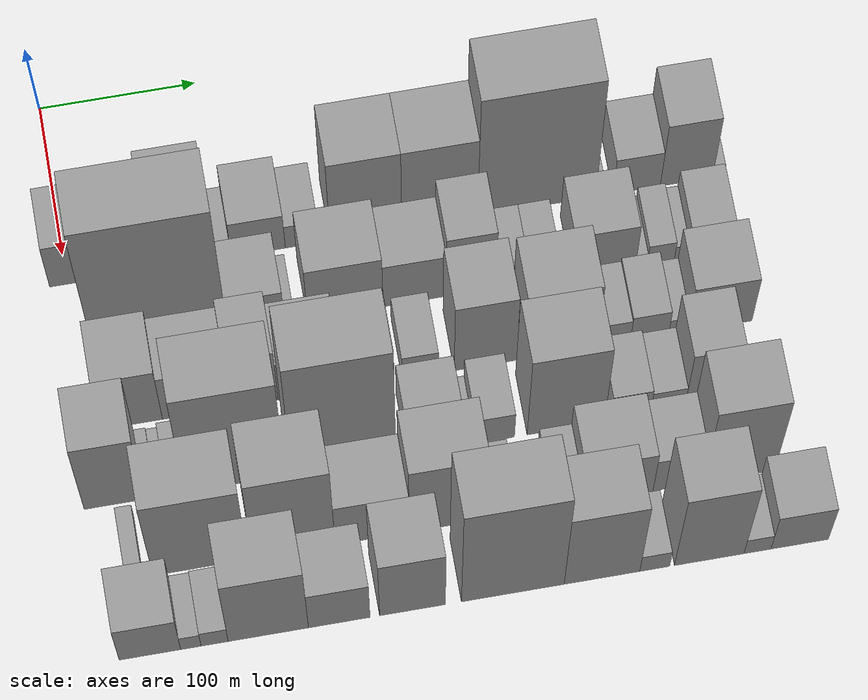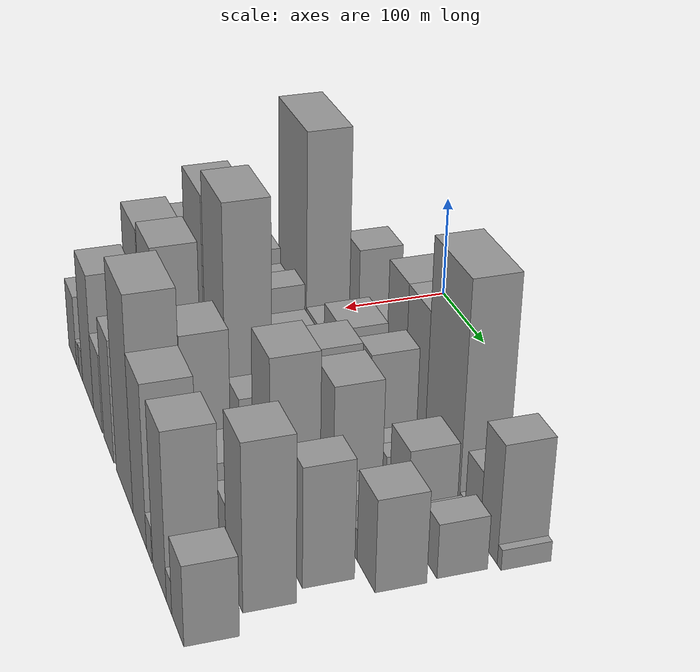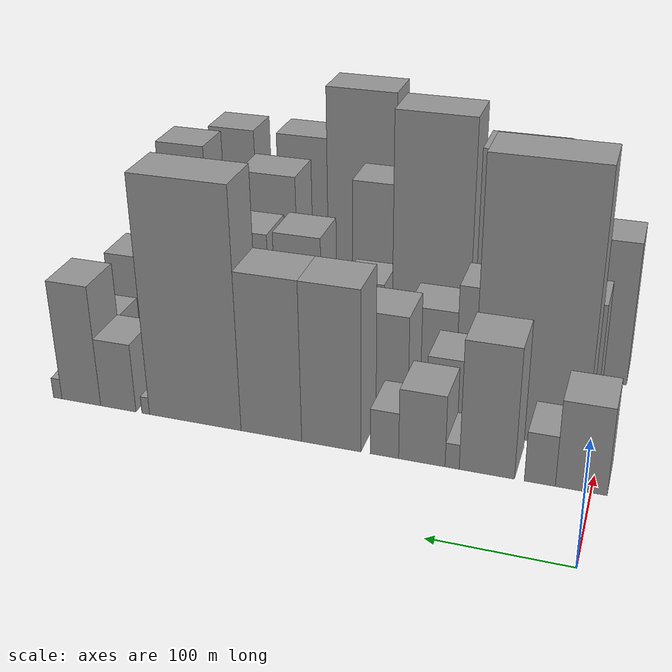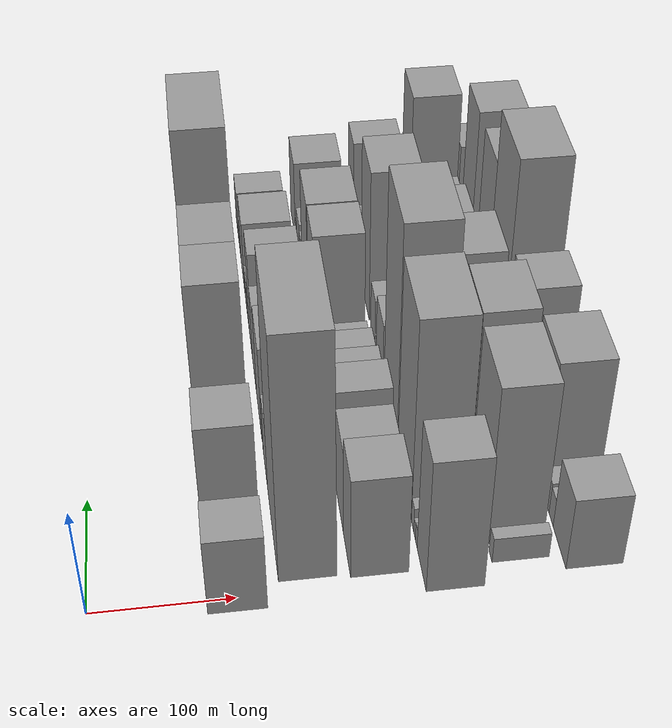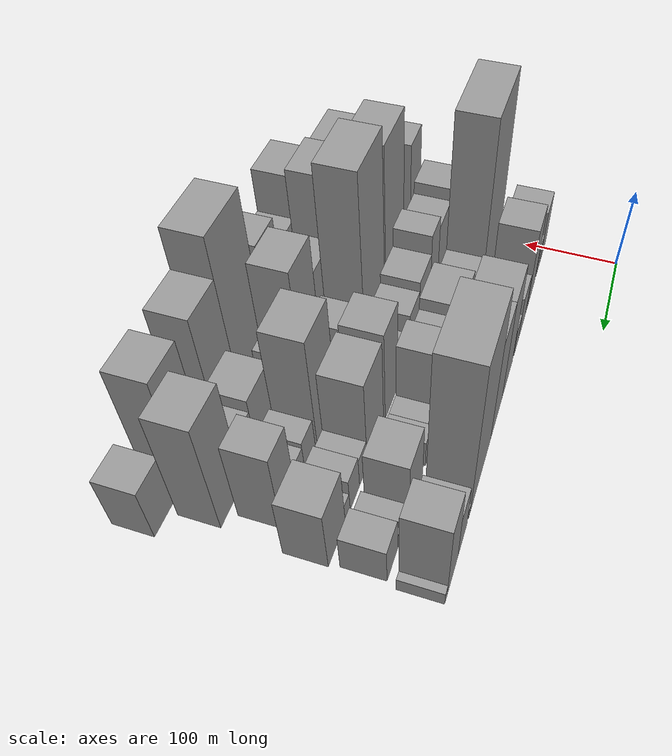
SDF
<sdf version="1.6">
 <world name="default">
  <model name="building_22">
   <static>1</static>
   <pose>100.0000 7.0305 0 0.000000 0.000000 0.000000</pose>
   <link name="link">
    <pose>0 0 36.00 0 0 0</pose>
    <collision name="collision"><geometry><box><size>40.0000 36.0629 72.0000</size></box></geometry></collision>
    <visual name="visual">
     <cast_shadows>0</cast_shadows>
     <geometry><box><size>40.0000 36.0629 72.0000</size></box></geometry>
     <material>
      <script>
       <uri>model://grey_wall/materials/scripts</uri>
       <uri>model://grey_wall/materials/textures</uri>
       <name>vrc/grey_wall</name>
      </script>
     </material>
    </visual>
   </link>
  </model>
  <model name="building_23">
   <static>1</static>
   <pose>100.0000 36.0467 0 0.000000 0.000000 0.000000</pose>
   <link name="link">
    <pose>0 0 21.00 0 0 0</pose>
    <collision name="collision"><geometry><box><size>40.0000 21.9696 42.0000</size></box></geometry></collision>
    <visual name="visual">
     <cast_shadows>0</cast_shadows>
     <geometry><box><size>40.0000 21.9696 42.0000</size></box></geometry>
     <material>
      <script>
       <uri>model://grey_wall/materials/scripts</uri>
       <uri>model://grey_wall/materials/textures</uri>
       <name>vrc/grey_wall</name>
      </script>
     </material>
    </visual>
   </link>
  </model>
  <model name="building_24">
   <static>1</static>
   <pose>100.0000 74.0486 0 0.000000 0.000000 0.000000</pose>
   <link name="link">
    <pose>0 0 54.00 0 0 0</pose>
    <collision name="collision"><geometry><box><size>40.0000 40.0341 108.0000</size></box></geometry></collision>
    <visual name="visual">
     <cast_shadows>0</cast_shadows>
     <geometry><box><size>40.0000 40.0341 108.0000</size></box></geometry>
     <material>
      <script>
       <uri>model://grey_wall/materials/scripts</uri>
       <uri>model://grey_wall/materials/textures</uri>
       <name>vrc/grey_wall</name>
      </script>
     </material>
    </visual>
   </link>
  </model>
  <model name="building_25">
   <static>1</static>
   <pose>100.0000 99.2579 0 0.000000 0.000000 0.000000</pose>
   <link name="link">
    <pose>0 0 10.50 0 0 0</pose>
    <collision name="collision"><geometry><box><size>40.0000 10.3845 21.0000</size></box></geometry></collision>
    <visual name="visual">
     <cast_shadows>0</cast_shadows>
     <geometry><box><size>40.0000 10.3845 21.0000</size></box></geometry>
     <material>
      <script>
       <uri>model://grey_wall/materials/scripts</uri>
       <uri>model://grey_wall/materials/textures</uri>
       <name>vrc/grey_wall</name>
      </script>
     </material>
    </visual>
   </link>
  </model>
  <model name="building_26">
   <static>1</static>
   <pose>100.0000 121.7577 0 0.000000 0.000000 0.000000</pose>
   <link name="link">
    <pose>0 0 30.00 0 0 0</pose>
    <collision name="collision"><geometry><box><size>40.0000 34.6151 60.0000</size></box></geometry></collision>
    <visual name="visual">
     <cast_shadows>0</cast_shadows>
     <geometry><box><size>40.0000 34.6151 60.0000</size></box></geometry>
     <material>
      <script>
       <uri>model://grey_wall/materials/scripts</uri>
       <uri>model://grey_wall/materials/textures</uri>
       <name>vrc/grey_wall</name>
      </script>
     </material>
    </visual>
   </link>
  </model>
  <model name="building_27">
   <static>1</static>
   <pose>100.0000 149.8607 0 0.000000 0.000000 0.000000</pose>
   <link name="link">
    <pose>0 0 19.50 0 0 0</pose>
    <collision name="collision"><geometry><box><size>40.0000 21.5908 39.0000</size></box></geometry></collision>
    <visual name="visual">
     <cast_shadows>0</cast_shadows>
     <geometry><box><size>40.0000 21.5908 39.0000</size></box></geometry>
     <material>
      <script>
       <uri>model://grey_wall/materials/scripts</uri>
       <uri>model://grey_wall/materials/textures</uri>
       <name>vrc/grey_wall</name>
      </script>
     </material>
    </visual>
   </link>
  </model>
  <model name="building_28">
   <static>1</static>
   <pose>100.0000 190.6589 0 0.000000 0.000000 0.000000</pose>
   <link name="link">
    <pose>0 0 67.50 0 0 0</pose>
    <collision name="collision"><geometry><box><size>40.0000 46.0056 135.0000</size></box></geometry></collision>
    <visual name="visual">
     <cast_shadows>0</cast_shadows>
     <geometry><box><size>40.0000 46.0056 135.0000</size></box></geometry>
     <material>
      <script>
       <uri>model://grey_wall/materials/scripts</uri>
       <uri>model://grey_wall/materials/textures</uri>
       <name>vrc/grey_wall</name>
      </script>
     </material>
    </visual>
   </link>
  </model>
  <model name="building_29">
   <static>1</static>
   <pose>100.0000 237.8732 0 0.000000 0.000000 0.000000</pose>
   <link name="link">
    <pose>0 0 67.50 0 0 0</pose>
    <collision name="collision"><geometry><box><size>40.0000 48.4229 135.0000</size></box></geometry></collision>
    <visual name="visual">
     <cast_shadows>0</cast_shadows>
     <geometry><box><size>40.0000 48.4229 135.0000</size></box></geometry>
     <material>
      <script>
       <uri>model://grey_wall/materials/scripts</uri>
       <uri>model://grey_wall/materials/textures</uri>
       <name>vrc/grey_wall</name>
      </script>
     </material>
    </visual>
   </link>
  </model>
  <model name="building_30">
   <static>1</static>
   <pose>100.0000 300.0080 0 0.000000 0.000000 0.000000</pose>
   <link name="link">
    <pose>0 0 100.50 0 0 0</pose>
    <collision name="collision"><geometry><box><size>40.0000 75.8467 201.0000</size></box></geometry></collision>
    <visual name="visual">
     <cast_shadows>0</cast_shadows>
     <geometry><box><size>40.0000 75.8467 201.0000</size></box></geometry>
     <material>
      <script>
       <uri>model://grey_wall/materials/scripts</uri>
       <uri>model://grey_wall/materials/textures</uri>
       <name>vrc/grey_wall</name>
      </script>
     </material>
    </visual>
   </link>
  </model>
  <model name="building_31">
   <static>1</static>
   <pose>100.0000 341.1318 0 0.000000 0.000000 0.000000</pose>
   <link name="link">
    <pose>0 0 7.50 0 0 0</pose>
    <collision name="collision"><geometry><box><size>40.0000 6.4011 15.0000</size></box></geometry></collision>
    <visual name="visual">
     <cast_shadows>0</cast_shadows>
     <geometry><box><size>40.0000 6.4011 15.0000</size></box></geometry>
     <material>
      <script>
       <uri>model://grey_wall/materials/scripts</uri>
       <uri>model://grey_wall/materials/textures</uri>
       <name>vrc/grey_wall</name>
      </script>
     </material>
    </visual>
   </link>
  </model>
  <model name="building_32">
   <static>1</static>
   <pose>100.0000 364.4983 0 0.000000 0.000000 0.000000</pose>
   <link name="link">
    <pose>0 0 30.00 0 0 0</pose>
    <collision name="collision"><geometry><box><size>40.0000 30.3318 60.0000</size></box></geometry></collision>
    <visual name="visual">
     <cast_shadows>0</cast_shadows>
     <geometry><box><size>40.0000 30.3318 60.0000</size></box></geometry>
     <material>
      <script>
       <uri>model://grey_wall/materials/scripts</uri>
       <uri>model://grey_wall/materials/textures</uri>
       <name>vrc/grey_wall</name>
      </script>
     </material>
    </visual>
   </link>
  </model>
  <model name="building_33">
   <static>1</static>
   <pose>100.0000 396.5555 0 0.000000 0.000000 0.000000</pose>
   <link name="link">
    <pose>0 0 52.50 0 0 0</pose>
    <collision name="collision"><geometry><box><size>40.0000 33.7827 105.0000</size></box></geometry></collision>
    <visual name="visual">
     <cast_shadows>0</cast_shadows>
     <geometry><box><size>40.0000 33.7827 105.0000</size></box></geometry>
     <material>
      <script>
       <uri>model://grey_wall/materials/scripts</uri>
       <uri>model://grey_wall/materials/textures</uri>
       <name>vrc/grey_wall</name>
      </script>
     </material>
    </visual>
   </link>
  </model>
  <model name="building_34">
   <static>1</static>
   <pose>100.0000 417.2055 0 0.000000 0.000000 0.000000</pose>
   <link name="link">
    <pose>0 0 9.00 0 0 0</pose>
    <collision name="collision"><geometry><box><size>40.0000 7.5172 18.0000</size></box></geometry></collision>
    <visual name="visual">
     <cast_shadows>0</cast_shadows>
     <geometry><box><size>40.0000 7.5172 18.0000</size></box></geometry>
     <material>
      <script>
       <uri>model://grey_wall/materials/scripts</uri>
       <uri>model://grey_wall/materials/textures</uri>
       <name>vrc/grey_wall</name>
      </script>
     </material>
    </visual>
   </link>
  </model>
  <model name="building_73">
   <static>1</static>
   <pose>149.0000 52.2994 0 0.000000 0.000000 0.000000</pose>
   <link name="link">
    <pose>0 0 112.50 0 0 0</pose>
    <collision name="collision"><geometry><box><size>40.0000 84.6129 225.0000</size></box></geometry></collision>
    <visual name="visual">
     <cast_shadows>0</cast_shadows>
     <geometry><box><size>40.0000 84.6129 225.0000</size></box></geometry>
     <material>
      <script>
       <uri>model://grey_wall/materials/scripts</uri>
       <uri>model://grey_wall/materials/textures</uri>
       <name>vrc/grey_wall</name>
      </script>
     </material>
    </visual>
   </link>
  </model>
  <model name="building_74">
   <static>1</static>
   <pose>149.0000 112.5580 0 0.000000 0.000000 0.000000</pose>
   <link name="link">
    <pose>0 0 30.00 0 0 0</pose>
    <collision name="collision"><geometry><box><size>40.0000 35.9042 60.0000</size></box></geometry></collision>
    <visual name="visual">
     <cast_shadows>0</cast_shadows>
     <geometry><box><size>40.0000 35.9042 60.0000</size></box></geometry>
     <material>
      <script>
       <uri>model://grey_wall/materials/scripts</uri>
       <uri>model://grey_wall/materials/textures</uri>
       <name>vrc/grey_wall</name>
      </script>
     </material>
    </visual>
   </link>
  </model>
  <model name="building_75">
   <static>1</static>
   <pose>149.0000 133.7605 0 0.000000 0.000000 0.000000</pose>
   <link name="link">
    <pose>0 0 7.50 0 0 0</pose>
    <collision name="collision"><geometry><box><size>40.0000 6.5008 15.0000</size></box></geometry></collision>
    <visual name="visual">
     <cast_shadows>0</cast_shadows>
     <geometry><box><size>40.0000 6.5008 15.0000</size></box></geometry>
     <material>
      <script>
       <uri>model://grey_wall/materials/scripts</uri>
       <uri>model://grey_wall/materials/textures</uri>
       <name>vrc/grey_wall</name>
      </script>
     </material>
    </visual>
   </link>
  </model>
  <model name="building_76">
   <static>1</static>
   <pose>149.0000 169.1198 0 0.000000 0.000000 0.000000</pose>
   <link name="link">
    <pose>0 0 45.00 0 0 0</pose>
    <collision name="collision"><geometry><box><size>40.0000 48.2178 90.0000</size></box></geometry></collision>
    <visual name="visual">
     <cast_shadows>0</cast_shadows>
     <geometry><box><size>40.0000 48.2178 90.0000</size></box></geometry>
     <material>
      <script>
       <uri>model://grey_wall/materials/scripts</uri>
       <uri>model://grey_wall/materials/textures</uri>
       <name>vrc/grey_wall</name>
      </script>
     </material>
    </visual>
   </link>
  </model>
  <model name="building_77">
   <static>1</static>
   <pose>149.0000 213.2837 0 0.000000 0.000000 0.000000</pose>
   <link name="link">
    <pose>0 0 37.50 0 0 0</pose>
    <collision name="collision"><geometry><box><size>40.0000 40.1100 75.0000</size></box></geometry></collision>
    <visual name="visual">
     <cast_shadows>0</cast_shadows>
     <geometry><box><size>40.0000 40.1100 75.0000</size></box></geometry>
     <material>
      <script>
       <uri>model://grey_wall/materials/scripts</uri>
       <uri>model://grey_wall/materials/textures</uri>
       <name>vrc/grey_wall</name>
      </script>
     </material>
    </visual>
   </link>
  </model>
  <model name="building_78">
   <static>1</static>
   <pose>149.0000 249.1378 0 0.000000 0.000000 0.000000</pose>
   <link name="link">
    <pose>0 0 52.50 0 0 0</pose>
    <collision name="collision"><geometry><box><size>40.0000 31.5982 105.0000</size></box></geometry></collision>
    <visual name="visual">
     <cast_shadows>0</cast_shadows>
     <geometry><box><size>40.0000 31.5982 105.0000</size></box></geometry>
     <material>
      <script>
       <uri>model://grey_wall/materials/scripts</uri>
       <uri>model://grey_wall/materials/textures</uri>
       <name>vrc/grey_wall</name>
      </script>
     </material>
    </visual>
   </link>
  </model>
  <model name="building_79">
   <static>1</static>
   <pose>149.0000 275.2438 0 0.000000 0.000000 0.000000</pose>
   <link name="link">
    <pose>0 0 18.00 0 0 0</pose>
    <collision name="collision"><geometry><box><size>40.0000 20.6138 36.0000</size></box></geometry></collision>
    <visual name="visual">
     <cast_shadows>0</cast_shadows>
     <geometry><box><size>40.0000 20.6138 36.0000</size></box></geometry>
     <material>
      <script>
       <uri>model://grey_wall/materials/scripts</uri>
       <uri>model://grey_wall/materials/textures</uri>
       <name>vrc/grey_wall</name>
      </script>
     </material>
    </visual>
   </link>
  </model>
  <model name="building_80">
   <static>1</static>
   <pose>149.0000 295.6123 0 0.000000 0.000000 0.000000</pose>
   <link name="link">
    <pose>0 0 18.00 0 0 0</pose>
    <collision name="collision"><geometry><box><size>40.0000 20.1232 36.0000</size></box></geometry></collision>
    <visual name="visual">
     <cast_shadows>0</cast_shadows>
     <geometry><box><size>40.0000 20.1232 36.0000</size></box></geometry>
     <material>
      <script>
       <uri>model://grey_wall/materials/scripts</uri>
       <uri>model://grey_wall/materials/textures</uri>
       <name>vrc/grey_wall</name>
      </script>
     </material>
    </visual>
   </link>
  </model>
  <model name="building_81">
   <static>1</static>
   <pose>149.0000 334.1449 0 0.000000 0.000000 0.000000</pose>
   <link name="link">
    <pose>0 0 36.00 0 0 0</pose>
    <collision name="collision"><geometry><box><size>40.0000 40.9420 72.0000</size></box></geometry></collision>
    <visual name="visual">
     <cast_shadows>0</cast_shadows>
     <geometry><box><size>40.0000 40.9420 72.0000</size></box></geometry>
     <material>
      <script>
       <uri>model://grey_wall/materials/scripts</uri>
       <uri>model://grey_wall/materials/textures</uri>
       <name>vrc/grey_wall</name>
      </script>
     </material>
    </visual>
   </link>
  </model>
  <model name="building_82">
   <static>1</static>
   <pose>149.0000 358.3603 0 0.000000 0.000000 0.000000</pose>
   <link name="link">
    <pose>0 0 7.50 0 0 0</pose>
    <collision name="collision"><geometry><box><size>40.0000 7.4889 15.0000</size></box></geometry></collision>
    <visual name="visual">
     <cast_shadows>0</cast_shadows>
     <geometry><box><size>40.0000 7.4889 15.0000</size></box></geometry>
     <material>
      <script>
       <uri>model://grey_wall/materials/scripts</uri>
       <uri>model://grey_wall/materials/textures</uri>
       <name>vrc/grey_wall</name>
      </script>
     </material>
    </visual>
   </link>
  </model>
  <model name="building_83">
   <static>1</static>
   <pose>149.0000 370.8016 0 0.000000 0.000000 0.000000</pose>
   <link name="link">
    <pose>0 0 15.00 0 0 0</pose>
    <collision name="collision"><geometry><box><size>40.0000 17.3936 30.0000</size></box></geometry></collision>
    <visual name="visual">
     <cast_shadows>0</cast_shadows>
     <geometry><box><size>40.0000 17.3936 30.0000</size></box></geometry>
     <material>
      <script>
       <uri>model://grey_wall/materials/scripts</uri>
       <uri>model://grey_wall/materials/textures</uri>
       <name>vrc/grey_wall</name>
      </script>
     </material>
    </visual>
   </link>
  </model>
  <model name="building_84">
   <static>1</static>
   <pose>149.0000 383.8453 0 0.000000 0.000000 0.000000</pose>
   <link name="link">
    <pose>0 0 10.50 0 0 0</pose>
    <collision name="collision"><geometry><box><size>40.0000 8.6939 21.0000</size></box></geometry></collision>
    <visual name="visual">
     <cast_shadows>0</cast_shadows>
     <geometry><box><size>40.0000 8.6939 21.0000</size></box></geometry>
     <material>
      <script>
       <uri>model://grey_wall/materials/scripts</uri>
       <uri>model://grey_wall/materials/textures</uri>
       <name>vrc/grey_wall</name>
      </script>
     </material>
    </visual>
   </link>
  </model>
  <model name="building_85">
   <static>1</static>
   <pose>149.0000 402.3575 0 0.000000 0.000000 0.000000</pose>
   <link name="link">
    <pose>0 0 24.00 0 0 0</pose>
    <collision name="collision"><geometry><box><size>40.0000 28.3305 48.0000</size></box></geometry></collision>
    <visual name="visual">
     <cast_shadows>0</cast_shadows>
     <geometry><box><size>40.0000 28.3305 48.0000</size></box></geometry>
     <material>
      <script>
       <uri>model://grey_wall/materials/scripts</uri>
       <uri>model://grey_wall/materials/textures</uri>
       <name>vrc/grey_wall</name>
      </script>
     </material>
    </visual>
   </link>
  </model>
  <model name="building_124">
   <static>1</static>
   <pose>198.0000 26.4327 0 0.000000 0.000000 0.000000</pose>
   <link name="link">
    <pose>0 0 48.00 0 0 0</pose>
    <collision name="collision"><geometry><box><size>40.0000 38.3182 96.0000</size></box></geometry></collision>
    <visual name="visual">
     <cast_shadows>0</cast_shadows>
     <geometry><box><size>40.0000 38.3182 96.0000</size></box></geometry>
     <material>
      <script>
       <uri>model://grey_wall/materials/scripts</uri>
       <uri>model://grey_wall/materials/textures</uri>
       <name>vrc/grey_wall</name>
      </script>
     </material>
    </visual>
   </link>
  </model>
  <model name="building_125">
   <static>1</static>
   <pose>198.0000 67.0859 0 0.000000 0.000000 0.000000</pose>
   <link name="link">
    <pose>0 0 40.50 0 0 0</pose>
    <collision name="collision"><geometry><box><size>40.0000 42.9884 81.0000</size></box></geometry></collision>
    <visual name="visual">
     <cast_shadows>0</cast_shadows>
     <geometry><box><size>40.0000 42.9884 81.0000</size></box></geometry>
     <material>
      <script>
       <uri>model://grey_wall/materials/scripts</uri>
       <uri>model://grey_wall/materials/textures</uri>
       <name>vrc/grey_wall</name>
      </script>
     </material>
    </visual>
   </link>
  </model>
  <model name="building_126">
   <static>1</static>
   <pose>198.0000 103.5206 0 0.000000 0.000000 0.000000</pose>
   <link name="link">
    <pose>0 0 48.00 0 0 0</pose>
    <collision name="collision"><geometry><box><size>40.0000 29.8809 96.0000</size></box></geometry></collision>
    <visual name="visual">
     <cast_shadows>0</cast_shadows>
     <geometry><box><size>40.0000 29.8809 96.0000</size></box></geometry>
     <material>
      <script>
       <uri>model://grey_wall/materials/scripts</uri>
       <uri>model://grey_wall/materials/textures</uri>
       <name>vrc/grey_wall</name>
      </script>
     </material>
    </visual>
   </link>
  </model>
  <model name="building_127">
   <static>1</static>
   <pose>198.0000 138.5486 0 0.000000 0.000000 0.000000</pose>
   <link name="link">
    <pose>0 0 36.00 0 0 0</pose>
    <collision name="collision"><geometry><box><size>40.0000 40.1751 72.0000</size></box></geometry></collision>
    <visual name="visual">
     <cast_shadows>0</cast_shadows>
     <geometry><box><size>40.0000 40.1751 72.0000</size></box></geometry>
     <material>
      <script>
       <uri>model://grey_wall/materials/scripts</uri>
       <uri>model://grey_wall/materials/textures</uri>
       <name>vrc/grey_wall</name>
      </script>
     </material>
    </visual>
   </link>
  </model>
  <model name="building_128">
   <static>1</static>
   <pose>198.0000 175.1893 0 0.000000 0.000000 0.000000</pose>
   <link name="link">
    <pose>0 0 30.00 0 0 0</pose>
    <collision name="collision"><geometry><box><size>40.0000 33.1063 60.0000</size></box></geometry></collision>
    <visual name="visual">
     <cast_shadows>0</cast_shadows>
     <geometry><box><size>40.0000 33.1063 60.0000</size></box></geometry>
     <material>
      <script>
       <uri>model://grey_wall/materials/scripts</uri>
       <uri>model://grey_wall/materials/textures</uri>
       <name>vrc/grey_wall</name>
      </script>
     </material>
    </visual>
   </link>
  </model>
  <model name="building_129">
   <static>1</static>
   <pose>198.0000 208.2592 0 0.000000 0.000000 0.000000</pose>
   <link name="link">
    <pose>0 0 21.00 0 0 0</pose>
    <collision name="collision"><geometry><box><size>40.0000 23.0335 42.0000</size></box></geometry></collision>
    <visual name="visual">
     <cast_shadows>0</cast_shadows>
     <geometry><box><size>40.0000 23.0335 42.0000</size></box></geometry>
     <material>
      <script>
       <uri>model://grey_wall/materials/scripts</uri>
       <uri>model://grey_wall/materials/textures</uri>
       <name>vrc/grey_wall</name>
      </script>
     </material>
    </visual>
   </link>
  </model>
  <model name="building_130">
   <static>1</static>
   <pose>198.0000 249.4900 0 0.000000 0.000000 0.000000</pose>
   <link name="link">
    <pose>0 0 60.00 0 0 0</pose>
    <collision name="collision"><geometry><box><size>40.0000 39.4283 120.0000</size></box></geometry></collision>
    <visual name="visual">
     <cast_shadows>0</cast_shadows>
     <geometry><box><size>40.0000 39.4283 120.0000</size></box></geometry>
     <material>
      <script>
       <uri>model://grey_wall/materials/scripts</uri>
       <uri>model://grey_wall/materials/textures</uri>
       <name>vrc/grey_wall</name>
      </script>
     </material>
    </visual>
   </link>
  </model>
  <model name="building_131">
   <static>1</static>
   <pose>198.0000 297.5132 0 0.000000 0.000000 0.000000</pose>
   <link name="link">
    <pose>0 0 58.50 0 0 0</pose>
    <collision name="collision"><geometry><box><size>40.0000 46.6180 117.0000</size></box></geometry></collision>
    <visual name="visual">
     <cast_shadows>0</cast_shadows>
     <geometry><box><size>40.0000 46.6180 117.0000</size></box></geometry>
     <material>
      <script>
       <uri>model://grey_wall/materials/scripts</uri>
       <uri>model://grey_wall/materials/textures</uri>
       <name>vrc/grey_wall</name>
      </script>
     </material>
    </visual>
   </link>
  </model>
  <model name="building_132">
   <static>1</static>
   <pose>198.0000 331.3176 0 0.000000 0.000000 0.000000</pose>
   <link name="link">
    <pose>0 0 19.50 0 0 0</pose>
    <collision name="collision"><geometry><box><size>40.0000 20.9909 39.0000</size></box></geometry></collision>
    <visual name="visual">
     <cast_shadows>0</cast_shadows>
     <geometry><box><size>40.0000 20.9909 39.0000</size></box></geometry>
     <material>
      <script>
       <uri>model://grey_wall/materials/scripts</uri>
       <uri>model://grey_wall/materials/textures</uri>
       <name>vrc/grey_wall</name>
      </script>
     </material>
    </visual>
   </link>
  </model>
  <model name="building_133">
   <static>1</static>
   <pose>198.0000 353.9723 0 0.000000 0.000000 0.000000</pose>
   <link name="link">
    <pose>0 0 22.50 0 0 0</pose>
    <collision name="collision"><geometry><box><size>40.0000 24.3185 45.0000</size></box></geometry></collision>
    <visual name="visual">
     <cast_shadows>0</cast_shadows>
     <geometry><box><size>40.0000 24.3185 45.0000</size></box></geometry>
     <material>
      <script>
       <uri>model://grey_wall/materials/scripts</uri>
       <uri>model://grey_wall/materials/textures</uri>
       <name>vrc/grey_wall</name>
      </script>
     </material>
    </visual>
   </link>
  </model>
  <model name="building_134">
   <static>1</static>
   <pose>198.0000 372.3274 0 0.000000 0.000000 0.000000</pose>
   <link name="link">
    <pose>0 0 13.50 0 0 0</pose>
    <collision name="collision"><geometry><box><size>40.0000 12.3916 27.0000</size></box></geometry></collision>
    <visual name="visual">
     <cast_shadows>0</cast_shadows>
     <geometry><box><size>40.0000 12.3916 27.0000</size></box></geometry>
     <material>
      <script>
       <uri>model://grey_wall/materials/scripts</uri>
       <uri>model://grey_wall/materials/textures</uri>
       <name>vrc/grey_wall</name>
      </script>
     </material>
    </visual>
   </link>
  </model>
  <model name="building_135">
   <static>1</static>
   <pose>198.0000 398.9053 0 0.000000 0.000000 0.000000</pose>
   <link name="link">
    <pose>0 0 40.50 0 0 0</pose>
    <collision name="collision"><geometry><box><size>40.0000 40.7642 81.0000</size></box></geometry></collision>
    <visual name="visual">
     <cast_shadows>0</cast_shadows>
     <geometry><box><size>40.0000 40.7642 81.0000</size></box></geometry>
     <material>
      <script>
       <uri>model://grey_wall/materials/scripts</uri>
       <uri>model://grey_wall/materials/textures</uri>
       <name>vrc/grey_wall</name>
      </script>
     </material>
    </visual>
   </link>
  </model>
  <model name="building_173">
   <static>1</static>
   <pose>247.0000 7.9397 0 0.000000 0.000000 0.000000</pose>
   <link name="link">
    <pose>0 0 63.00 0 0 0</pose>
    <collision name="collision"><geometry><box><size>40.0000 37.8175 126.0000</size></box></geometry></collision>
    <visual name="visual">
     <cast_shadows>0</cast_shadows>
     <geometry><box><size>40.0000 37.8175 126.0000</size></box></geometry>
     <material>
      <script>
       <uri>model://grey_wall/materials/scripts</uri>
       <uri>model://grey_wall/materials/textures</uri>
       <name>vrc/grey_wall</name>
      </script>
     </material>
    </visual>
   </link>
  </model>
  <model name="building_174">
   <static>1</static>
   <pose>247.0000 30.5509 0 0.000000 0.000000 0.000000</pose>
   <link name="link">
    <pose>0 0 9.00 0 0 0</pose>
    <collision name="collision"><geometry><box><size>40.0000 7.4051 18.0000</size></box></geometry></collision>
    <visual name="visual">
     <cast_shadows>0</cast_shadows>
     <geometry><box><size>40.0000 7.4051 18.0000</size></box></geometry>
     <material>
      <script>
       <uri>model://grey_wall/materials/scripts</uri>
       <uri>model://grey_wall/materials/textures</uri>
       <name>vrc/grey_wall</name>
      </script>
     </material>
    </visual>
   </link>
  </model>
  <model name="building_175">
   <static>1</static>
   <pose>247.0000 37.7864 0 0.000000 0.000000 0.000000</pose>
   <link name="link">
    <pose>0 0 7.50 0 0 0</pose>
    <collision name="collision"><geometry><box><size>40.0000 7.0658 15.0000</size></box></geometry></collision>
    <visual name="visual">
     <cast_shadows>0</cast_shadows>
     <geometry><box><size>40.0000 7.0658 15.0000</size></box></geometry>
     <material>
      <script>
       <uri>model://grey_wall/materials/scripts</uri>
       <uri>model://grey_wall/materials/textures</uri>
       <name>vrc/grey_wall</name>
      </script>
     </material>
    </visual>
   </link>
  </model>
  <model name="building_176">
   <static>1</static>
   <pose>247.0000 46.6369 0 0.000000 0.000000 0.000000</pose>
   <link name="link">
    <pose>0 0 12.00 0 0 0</pose>
    <collision name="collision"><geometry><box><size>40.0000 10.6350 24.0000</size></box></geometry></collision>
    <visual name="visual">
     <cast_shadows>0</cast_shadows>
     <geometry><box><size>40.0000 10.6350 24.0000</size></box></geometry>
     <material>
      <script>
       <uri>model://grey_wall/materials/scripts</uri>
       <uri>model://grey_wall/materials/textures</uri>
       <name>vrc/grey_wall</name>
      </script>
     </material>
    </visual>
   </link>
  </model>
  <model name="building_177">
   <static>1</static>
   <pose>247.0000 83.4790 0 0.000000 0.000000 0.000000</pose>
   <link name="link">
    <pose>0 0 94.50 0 0 0</pose>
    <collision name="collision"><geometry><box><size>40.0000 63.0493 189.0000</size></box></geometry></collision>
    <visual name="visual">
     <cast_shadows>0</cast_shadows>
     <geometry><box><size>40.0000 63.0493 189.0000</size></box></geometry>
     <material>
      <script>
       <uri>model://grey_wall/materials/scripts</uri>
       <uri>model://grey_wall/materials/textures</uri>
       <name>vrc/grey_wall</name>
      </script>
     </material>
    </visual>
   </link>
  </model>
  <model name="building_178">
   <static>1</static>
   <pose>247.0000 151.7191 0 0.000000 0.000000 0.000000</pose>
   <link name="link">
    <pose>0 0 106.50 0 0 0</pose>
    <collision name="collision"><geometry><box><size>40.0000 65.4309 213.0000</size></box></geometry></collision>
    <visual name="visual">
     <cast_shadows>0</cast_shadows>
     <geometry><box><size>40.0000 65.4309 213.0000</size></box></geometry>
     <material>
      <script>
       <uri>model://grey_wall/materials/scripts</uri>
       <uri>model://grey_wall/materials/textures</uri>
       <name>vrc/grey_wall</name>
      </script>
     </material>
    </visual>
   </link>
  </model>
  <model name="building_179">
   <static>1</static>
   <pose>247.0000 209.3337 0 0.000000 0.000000 0.000000</pose>
   <link name="link">
    <pose>0 0 30.00 0 0 0</pose>
    <collision name="collision"><geometry><box><size>40.0000 35.7983 60.0000</size></box></geometry></collision>
    <visual name="visual">
     <cast_shadows>0</cast_shadows>
     <geometry><box><size>40.0000 35.7983 60.0000</size></box></geometry>
     <material>
      <script>
       <uri>model://grey_wall/materials/scripts</uri>
       <uri>model://grey_wall/materials/textures</uri>
       <name>vrc/grey_wall</name>
      </script>
     </material>
    </visual>
   </link>
  </model>
  <model name="building_180">
   <static>1</static>
   <pose>247.0000 230.7442 0 0.000000 0.000000 0.000000</pose>
   <link name="link">
    <pose>0 0 7.50 0 0 0</pose>
    <collision name="collision"><geometry><box><size>40.0000 7.0227 15.0000</size></box></geometry></collision>
    <visual name="visual">
     <cast_shadows>0</cast_shadows>
     <geometry><box><size>40.0000 7.0227 15.0000</size></box></geometry>
     <material>
      <script>
       <uri>model://grey_wall/materials/scripts</uri>
       <uri>model://grey_wall/materials/textures</uri>
       <name>vrc/grey_wall</name>
      </script>
     </material>
    </visual>
   </link>
  </model>
  <model name="building_181">
   <static>1</static>
   <pose>247.0000 246.6758 0 0.000000 0.000000 0.000000</pose>
   <link name="link">
    <pose>0 0 24.00 0 0 0</pose>
    <collision name="collision"><geometry><box><size>40.0000 24.8406 48.0000</size></box></geometry></collision>
    <visual name="visual">
     <cast_shadows>0</cast_shadows>
     <geometry><box><size>40.0000 24.8406 48.0000</size></box></geometry>
     <material>
      <script>
       <uri>model://grey_wall/materials/scripts</uri>
       <uri>model://grey_wall/materials/textures</uri>
       <name>vrc/grey_wall</name>
      </script>
     </material>
    </visual>
   </link>
  </model>
  <model name="building_182">
   <static>1</static>
   <pose>247.0000 291.5370 0 0.000000 0.000000 0.000000</pose>
   <link name="link">
    <pose>0 0 73.50 0 0 0</pose>
    <collision name="collision"><geometry><box><size>40.0000 48.8818 147.0000</size></box></geometry></collision>
    <visual name="visual">
     <cast_shadows>0</cast_shadows>
     <geometry><box><size>40.0000 48.8818 147.0000</size></box></geometry>
     <material>
      <script>
       <uri>model://grey_wall/materials/scripts</uri>
       <uri>model://grey_wall/materials/textures</uri>
       <name>vrc/grey_wall</name>
      </script>
     </material>
    </visual>
   </link>
  </model>
  <model name="building_183">
   <static>1</static>
   <pose>247.0000 332.5207 0 0.000000 0.000000 0.000000</pose>
   <link name="link">
    <pose>0 0 24.00 0 0 0</pose>
    <collision name="collision"><geometry><box><size>40.0000 25.0857 48.0000</size></box></geometry></collision>
    <visual name="visual">
     <cast_shadows>0</cast_shadows>
     <geometry><box><size>40.0000 25.0857 48.0000</size></box></geometry>
     <material>
      <script>
       <uri>model://grey_wall/materials/scripts</uri>
       <uri>model://grey_wall/materials/textures</uri>
       <name>vrc/grey_wall</name>
      </script>
     </material>
    </visual>
   </link>
  </model>
  <model name="building_184">
   <static>1</static>
   <pose>247.0000 355.8893 0 0.000000 0.000000 0.000000</pose>
   <link name="link">
    <pose>0 0 21.00 0 0 0</pose>
    <collision name="collision"><geometry><box><size>40.0000 21.6515 42.0000</size></box></geometry></collision>
    <visual name="visual">
     <cast_shadows>0</cast_shadows>
     <geometry><box><size>40.0000 21.6515 42.0000</size></box></geometry>
     <material>
      <script>
       <uri>model://grey_wall/materials/scripts</uri>
       <uri>model://grey_wall/materials/textures</uri>
       <name>vrc/grey_wall</name>
      </script>
     </material>
    </visual>
   </link>
  </model>
  <model name="building_185">
   <static>1</static>
   <pose>247.0000 383.0094 0 0.000000 0.000000 0.000000</pose>
   <link name="link">
    <pose>0 0 52.50 0 0 0</pose>
    <collision name="collision"><geometry><box><size>40.0000 32.5887 105.0000</size></box></geometry></collision>
    <visual name="visual">
     <cast_shadows>0</cast_shadows>
     <geometry><box><size>40.0000 32.5887 105.0000</size></box></geometry>
     <material>
      <script>
       <uri>model://grey_wall/materials/scripts</uri>
       <uri>model://grey_wall/materials/textures</uri>
       <name>vrc/grey_wall</name>
      </script>
     </material>
    </visual>
   </link>
  </model>
  <model name="building_227">
   <static>1</static>
   <pose>296.0000 13.1952 0 0.000000 0.000000 0.000000</pose>
   <link name="link">
    <pose>0 0 12.00 0 0 0</pose>
    <collision name="collision"><geometry><box><size>40.0000 10.4592 24.0000</size></box></geometry></collision>
    <visual name="visual">
     <cast_shadows>0</cast_shadows>
     <geometry><box><size>40.0000 10.4592 24.0000</size></box></geometry>
     <material>
      <script>
       <uri>model://grey_wall/materials/scripts</uri>
       <uri>model://grey_wall/materials/textures</uri>
       <name>vrc/grey_wall</name>
      </script>
     </material>
    </visual>
   </link>
  </model>
  <model name="building_228">
   <static>1</static>
   <pose>296.0000 53.9660 0 0.000000 0.000000 0.000000</pose>
   <link name="link">
    <pose>0 0 75.00 0 0 0</pose>
    <collision name="collision"><geometry><box><size>40.0000 59.0824 150.0000</size></box></geometry></collision>
    <visual name="visual">
     <cast_shadows>0</cast_shadows>
     <geometry><box><size>40.0000 59.0824 150.0000</size></box></geometry>
     <material>
      <script>
       <uri>model://grey_wall/materials/scripts</uri>
       <uri>model://grey_wall/materials/textures</uri>
       <name>vrc/grey_wall</name>
      </script>
     </material>
    </visual>
   </link>
  </model>
  <model name="building_229">
   <static>1</static>
   <pose>296.0000 112.2394 0 0.000000 0.000000 0.000000</pose>
   <link name="link">
    <pose>0 0 79.50 0 0 0</pose>
    <collision name="collision"><geometry><box><size>40.0000 51.4643 159.0000</size></box></geometry></collision>
    <visual name="visual">
     <cast_shadows>0</cast_shadows>
     <geometry><box><size>40.0000 51.4643 159.0000</size></box></geometry>
     <material>
      <script>
       <uri>model://grey_wall/materials/scripts</uri>
       <uri>model://grey_wall/materials/textures</uri>
       <name>vrc/grey_wall</name>
      </script>
     </material>
    </visual>
   </link>
  </model>
  <model name="building_230">
   <static>1</static>
   <pose>296.0000 161.1426 0 0.000000 0.000000 0.000000</pose>
   <link name="link">
    <pose>0 0 40.50 0 0 0</pose>
    <collision name="collision"><geometry><box><size>40.0000 46.3421 81.0000</size></box></geometry></collision>
    <visual name="visual">
     <cast_shadows>0</cast_shadows>
     <geometry><box><size>40.0000 46.3421 81.0000</size></box></geometry>
     <material>
      <script>
       <uri>model://grey_wall/materials/scripts</uri>
       <uri>model://grey_wall/materials/textures</uri>
       <name>vrc/grey_wall</name>
      </script>
     </material>
    </visual>
   </link>
  </model>
  <model name="building_231">
   <static>1</static>
   <pose>296.0000 209.0553 0 0.000000 0.000000 0.000000</pose>
   <link name="link">
    <pose>0 0 64.50 0 0 0</pose>
    <collision name="collision"><geometry><box><size>40.0000 49.4834 129.0000</size></box></geometry></collision>
    <visual name="visual">
     <cast_shadows>0</cast_shadows>
     <geometry><box><size>40.0000 49.4834 129.0000</size></box></geometry>
     <material>
      <script>
       <uri>model://grey_wall/materials/scripts</uri>
       <uri>model://grey_wall/materials/textures</uri>
       <name>vrc/grey_wall</name>
      </script>
     </material>
    </visual>
   </link>
  </model>
  <model name="building_232">
   <static>1</static>
   <pose>296.0000 244.3290 0 0.000000 0.000000 0.000000</pose>
   <link name="link">
    <pose>0 0 15.00 0 0 0</pose>
    <collision name="collision"><geometry><box><size>40.0000 15.0640 30.0000</size></box></geometry></collision>
    <visual name="visual">
     <cast_shadows>0</cast_shadows>
     <geometry><box><size>40.0000 15.0640 30.0000</size></box></geometry>
     <material>
      <script>
       <uri>model://grey_wall/materials/scripts</uri>
       <uri>model://grey_wall/materials/textures</uri>
       <name>vrc/grey_wall</name>
      </script>
     </material>
    </visual>
   </link>
  </model>
  <model name="building_233">
   <static>1</static>
   <pose>296.0000 265.5873 0 0.000000 0.000000 0.000000</pose>
   <link name="link">
    <pose>0 0 9.00 0 0 0</pose>
    <collision name="collision"><geometry><box><size>40.0000 7.4527 18.0000</size></box></geometry></collision>
    <visual name="visual">
     <cast_shadows>0</cast_shadows>
     <geometry><box><size>40.0000 7.4527 18.0000</size></box></geometry>
     <material>
      <script>
       <uri>model://grey_wall/materials/scripts</uri>
       <uri>model://grey_wall/materials/textures</uri>
       <name>vrc/grey_wall</name>
      </script>
     </material>
    </visual>
   </link>
  </model>
  <model name="building_234">
   <static>1</static>
   <pose>296.0000 282.3575 0 0.000000 0.000000 0.000000</pose>
   <link name="link">
    <pose>0 0 19.50 0 0 0</pose>
    <collision name="collision"><geometry><box><size>40.0000 20.0877 39.0000</size></box></geometry></collision>
    <visual name="visual">
     <cast_shadows>0</cast_shadows>
     <geometry><box><size>40.0000 20.0877 39.0000</size></box></geometry>
     <material>
      <script>
       <uri>model://grey_wall/materials/scripts</uri>
       <uri>model://grey_wall/materials/textures</uri>
       <name>vrc/grey_wall</name>
      </script>
     </material>
    </visual>
   </link>
  </model>
  <model name="building_235">
   <static>1</static>
   <pose>296.0000 314.8577 0 0.000000 0.000000 0.000000</pose>
   <link name="link">
    <pose>0 0 39.00 0 0 0</pose>
    <collision name="collision"><geometry><box><size>40.0000 44.9128 78.0000</size></box></geometry></collision>
    <visual name="visual">
     <cast_shadows>0</cast_shadows>
     <geometry><box><size>40.0000 44.9128 78.0000</size></box></geometry>
     <material>
      <script>
       <uri>model://grey_wall/materials/scripts</uri>
       <uri>model://grey_wall/materials/textures</uri>
       <name>vrc/grey_wall</name>
      </script>
     </material>
    </visual>
   </link>
  </model>
  <model name="building_236">
   <static>1</static>
   <pose>296.0000 353.2326 0 0.000000 0.000000 0.000000</pose>
   <link name="link">
    <pose>0 0 31.50 0 0 0</pose>
    <collision name="collision"><geometry><box><size>40.0000 31.8369 63.0000</size></box></geometry></collision>
    <visual name="visual">
     <cast_shadows>0</cast_shadows>
     <geometry><box><size>40.0000 31.8369 63.0000</size></box></geometry>
     <material>
      <script>
       <uri>model://grey_wall/materials/scripts</uri>
       <uri>model://grey_wall/materials/textures</uri>
       <name>vrc/grey_wall</name>
      </script>
     </material>
    </visual>
   </link>
  </model>
  <model name="building_237">
   <static>1</static>
   <pose>296.0000 391.5970 0 0.000000 0.000000 0.000000</pose>
   <link name="link">
    <pose>0 0 72.00 0 0 0</pose>
    <collision name="collision"><geometry><box><size>40.0000 44.8920 144.0000</size></box></geometry></collision>
    <visual name="visual">
     <cast_shadows>0</cast_shadows>
     <geometry><box><size>40.0000 44.8920 144.0000</size></box></geometry>
     <material>
      <script>
       <uri>model://grey_wall/materials/scripts</uri>
       <uri>model://grey_wall/materials/textures</uri>
       <name>vrc/grey_wall</name>
      </script>
     </material>
    </visual>
   </link>
  </model>
  <model name="building_271">
   <static>1</static>
   <pose>345.0000 15.0123 0 0.000000 0.000000 0.000000</pose>
   <link name="link">
    <pose>0 0 34.50 0 0 0</pose>
    <collision name="collision"><geometry><box><size>40.0000 38.0188 69.0000</size></box></geometry></collision>
    <visual name="visual">
     <cast_shadows>0</cast_shadows>
     <geometry><box><size>40.0000 38.0188 69.0000</size></box></geometry>
     <material>
      <script>
       <uri>model://grey_wall/materials/scripts</uri>
       <uri>model://grey_wall/materials/textures</uri>
       <name>vrc/grey_wall</name>
      </script>
     </material>
    </visual>
   </link>
  </model>
  <model name="building_272">
   <static>1</static>
   <pose>345.0000 40.3163 0 0.000000 0.000000 0.000000</pose>
   <link name="link">
    <pose>0 0 13.50 0 0 0</pose>
    <collision name="collision"><geometry><box><size>40.0000 12.5892 27.0000</size></box></geometry></collision>
    <visual name="visual">
     <cast_shadows>0</cast_shadows>
     <geometry><box><size>40.0000 12.5892 27.0000</size></box></geometry>
     <material>
      <script>
       <uri>model://grey_wall/materials/scripts</uri>
       <uri>model://grey_wall/materials/textures</uri>
       <name>vrc/grey_wall</name>
      </script>
     </material>
    </visual>
   </link>
  </model>
  <model name="building_273">
   <static>1</static>
   <pose>345.0000 55.0047 0 0.000000 0.000000 0.000000</pose>
   <link name="link">
    <pose>0 0 15.00 0 0 0</pose>
    <collision name="collision"><geometry><box><size>40.0000 16.7875 30.0000</size></box></geometry></collision>
    <visual name="visual">
     <cast_shadows>0</cast_shadows>
     <geometry><box><size>40.0000 16.7875 30.0000</size></box></geometry>
     <material>
      <script>
       <uri>model://grey_wall/materials/scripts</uri>
       <uri>model://grey_wall/materials/textures</uri>
       <name>vrc/grey_wall</name>
      </script>
     </material>
    </visual>
   </link>
  </model>
  <model name="building_274">
   <static>1</static>
   <pose>345.0000 88.2772 0 0.000000 0.000000 0.000000</pose>
   <link name="link">
    <pose>0 0 64.50 0 0 0</pose>
    <collision name="collision"><geometry><box><size>40.0000 49.7576 129.0000</size></box></geometry></collision>
    <visual name="visual">
     <cast_shadows>0</cast_shadows>
     <geometry><box><size>40.0000 49.7576 129.0000</size></box></geometry>
     <material>
      <script>
       <uri>model://grey_wall/materials/scripts</uri>
       <uri>model://grey_wall/materials/textures</uri>
       <name>vrc/grey_wall</name>
      </script>
     </material>
    </visual>
   </link>
  </model>
  <model name="building_275">
   <static>1</static>
   <pose>345.0000 132.2573 0 0.000000 0.000000 0.000000</pose>
   <link name="link">
    <pose>0 0 37.50 0 0 0</pose>
    <collision name="collision"><geometry><box><size>40.0000 38.2026 75.0000</size></box></geometry></collision>
    <visual name="visual">
     <cast_shadows>0</cast_shadows>
     <geometry><box><size>40.0000 38.2026 75.0000</size></box></geometry>
     <material>
      <script>
       <uri>model://grey_wall/materials/scripts</uri>
       <uri>model://grey_wall/materials/textures</uri>
       <name>vrc/grey_wall</name>
      </script>
     </material>
    </visual>
   </link>
  </model>
  <model name="building_276">
   <static>1</static>
   <pose>345.0000 177.8045 0 0.000000 0.000000 0.000000</pose>
   <link name="link">
    <pose>0 0 57.00 0 0 0</pose>
    <collision name="collision"><geometry><box><size>40.0000 40.8917 114.0000</size></box></geometry></collision>
    <visual name="visual">
     <cast_shadows>0</cast_shadows>
     <geometry><box><size>40.0000 40.8917 114.0000</size></box></geometry>
     <material>
      <script>
       <uri>model://grey_wall/materials/scripts</uri>
       <uri>model://grey_wall/materials/textures</uri>
       <name>vrc/grey_wall</name>
      </script>
     </material>
    </visual>
   </link>
  </model>
  <model name="building_277">
   <static>1</static>
   <pose>345.0000 240.3098 0 0.000000 0.000000 0.000000</pose>
   <link name="link">
    <pose>0 0 96.00 0 0 0</pose>
    <collision name="collision"><geometry><box><size>40.0000 64.1189 192.0000</size></box></geometry></collision>
    <visual name="visual">
     <cast_shadows>0</cast_shadows>
     <geometry><box><size>40.0000 64.1189 192.0000</size></box></geometry>
     <material>
      <script>
       <uri>model://grey_wall/materials/scripts</uri>
       <uri>model://grey_wall/materials/textures</uri>
       <name>vrc/grey_wall</name>
      </script>
     </material>
    </visual>
   </link>
  </model>
  <model name="building_278">
   <static>1</static>
   <pose>345.0000 295.9930 0 0.000000 0.000000 0.000000</pose>
   <link name="link">
    <pose>0 0 72.00 0 0 0</pose>
    <collision name="collision"><geometry><box><size>40.0000 47.2474 144.0000</size></box></geometry></collision>
    <visual name="visual">
     <cast_shadows>0</cast_shadows>
     <geometry><box><size>40.0000 47.2474 144.0000</size></box></geometry>
     <material>
      <script>
       <uri>model://grey_wall/materials/scripts</uri>
       <uri>model://grey_wall/materials/textures</uri>
       <name>vrc/grey_wall</name>
      </script>
     </material>
    </visual>
   </link>
  </model>
  <model name="building_279">
   <static>1</static>
   <pose>345.0000 328.9728 0 0.000000 0.000000 0.000000</pose>
   <link name="link">
    <pose>0 0 16.50 0 0 0</pose>
    <collision name="collision"><geometry><box><size>40.0000 18.7121 33.0000</size></box></geometry></collision>
    <visual name="visual">
     <cast_shadows>0</cast_shadows>
     <geometry><box><size>40.0000 18.7121 33.0000</size></box></geometry>
     <material>
      <script>
       <uri>model://grey_wall/materials/scripts</uri>
       <uri>model://grey_wall/materials/textures</uri>
       <name>vrc/grey_wall</name>
      </script>
     </material>
    </visual>
   </link>
  </model>
  <model name="building_280">
   <static>1</static>
   <pose>345.0000 363.1730 0 0.000000 0.000000 0.000000</pose>
   <link name="link">
    <pose>0 0 72.00 0 0 0</pose>
    <collision name="collision"><geometry><box><size>40.0000 43.6884 144.0000</size></box></geometry></collision>
    <visual name="visual">
     <cast_shadows>0</cast_shadows>
     <geometry><box><size>40.0000 43.6884 144.0000</size></box></geometry>
     <material>
      <script>
       <uri>model://grey_wall/materials/scripts</uri>
       <uri>model://grey_wall/materials/textures</uri>
       <name>vrc/grey_wall</name>
      </script>
     </material>
    </visual>
   </link>
  </model>
  <model name="building_281">
   <static>1</static>
   <pose>345.0000 393.4663 0 0.000000 0.000000 0.000000</pose>
   <link name="link">
    <pose>0 0 15.00 0 0 0</pose>
    <collision name="collision"><geometry><box><size>40.0000 16.8981 30.0000</size></box></geometry></collision>
    <visual name="visual">
     <cast_shadows>0</cast_shadows>
     <geometry><box><size>40.0000 16.8981 30.0000</size></box></geometry>
     <material>
      <script>
       <uri>model://grey_wall/materials/scripts</uri>
       <uri>model://grey_wall/materials/textures</uri>
       <name>vrc/grey_wall</name>
      </script>
     </material>
    </visual>
   </link>
  </model>
  <model name="building_282">
   <static>1</static>
   <pose>345.0000 419.9333 0 0.000000 0.000000 0.000000</pose>
   <link name="link">
    <pose>0 0 34.50 0 0 0</pose>
    <collision name="collision"><geometry><box><size>40.0000 36.0361 69.0000</size></box></geometry></collision>
    <visual name="visual">
     <cast_shadows>0</cast_shadows>
     <geometry><box><size>40.0000 36.0361 69.0000</size></box></geometry>
     <material>
      <script>
       <uri>model://grey_wall/materials/scripts</uri>
       <uri>model://grey_wall/materials/textures</uri>
       <name>vrc/grey_wall</name>
      </script>
     </material>
    </visual>
   </link>
  </model>
 </world>
</sdf>
